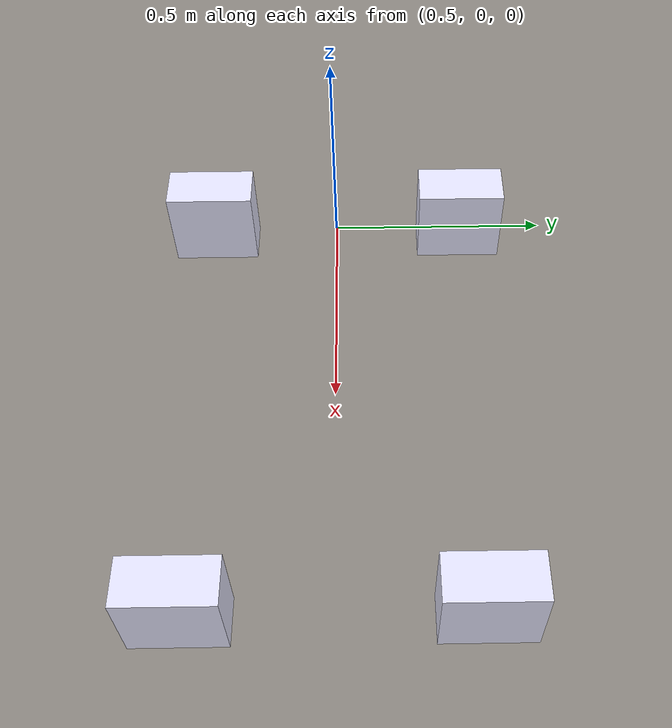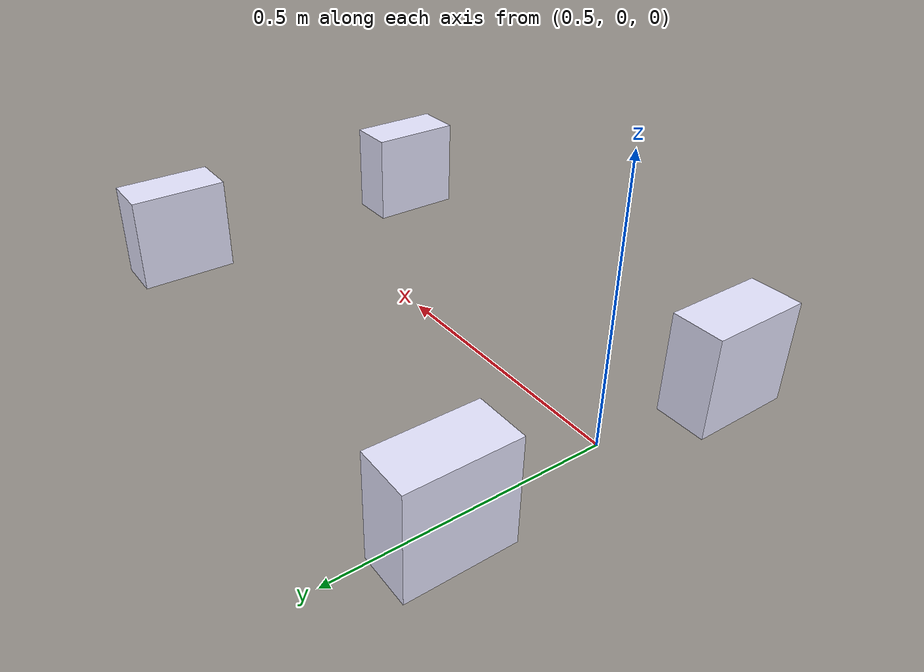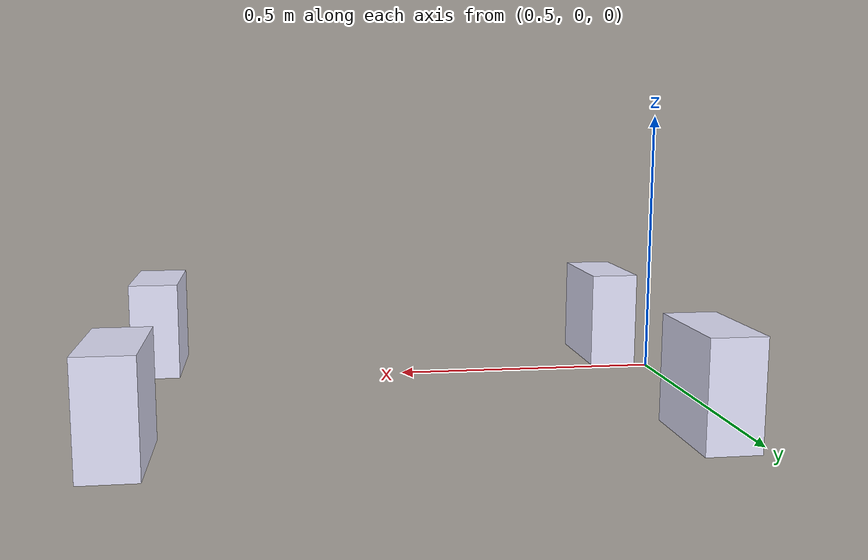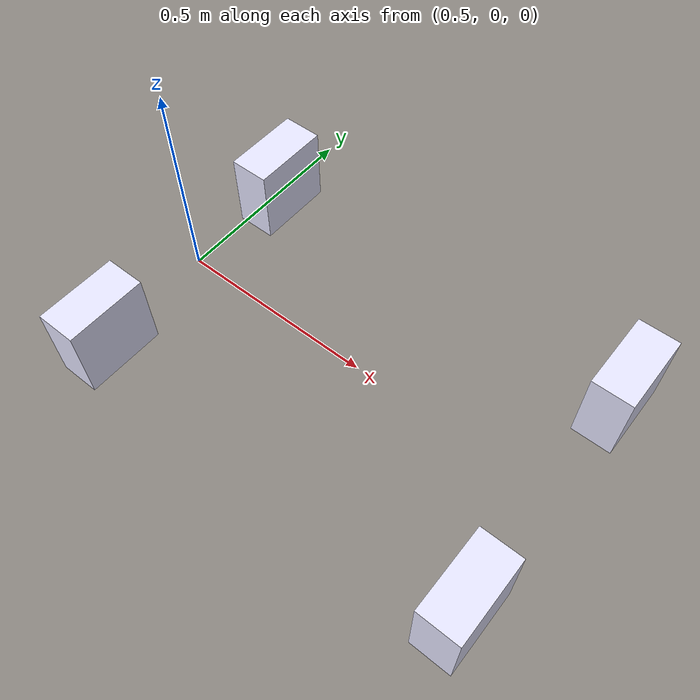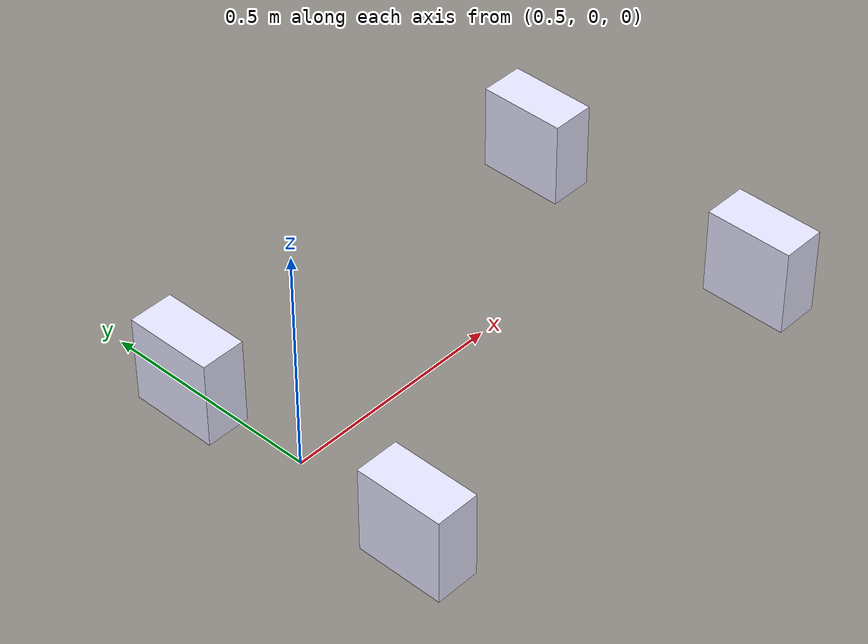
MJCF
<mujoco model="base" >
  <worldbody>
    <body name="pillar_1" pos="1.5 0.3 0.05" quat="1 0 0 0">
      <geom name="pillar_1" type="box" size=".05 .1 .1" rgba="0.9 0.9 1 1"/>
    </body>
    <body name="pillar_2" pos="1.5 -0.3 .05" quat="1 0 0 0">
      <geom name="pillar_2" type="box" size=".05 .1 .1" rgba="0.9 0.9 1 1"/>
    </body>
    <body name="pillar_3" pos="0.5 .3 0.05" quat="1 0 0 0">
      <geom name="pillar_3" type="box" size=".05 .1 .1" rgba="0.9 0.9 1 1"/>
    </body>
    <body name="pillar_4" pos="0.5 -0.3 0.05" quat="1 0 0 0">
      <geom name="pillar_4" type="box" size=".05 .1 .1" rgba="0.9 0.9 1 1"/>
    </body>
  </worldbody>
</mujoco>
